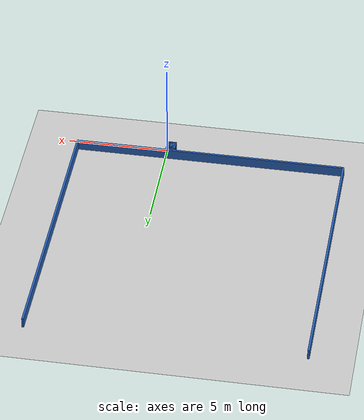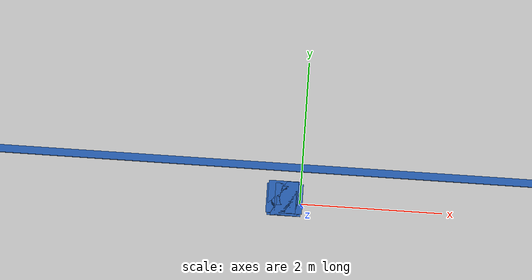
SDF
<?xml version="1.0" ?>
    <sdf version="1.5">
      <world name="default">
        <!-- A global light source -->
        <include>
          <uri>model://sun</uri>
        </include>
        <!-- A ground plane -->
        <include>
          <uri>model://ground_plane</uri>
        </include>

    <model name='libopen_space_final_T2B_123_13'>
      <static>1</static>
      <pose frame=''>-0.225000 0.075000 0.000000 0.000000 0.000000 0.000000</pose>
      <link name='link'>
        <inertial>
          <mass>1</mass>
          <inertia>
            <ixx>0.145833</ixx>
            <ixy>0</ixy>
            <ixz>0</ixz>
            <iyy>0.145833</iyy>
            <iyz>0</iyz>
            <izz>0.125</izz>
          </inertia>
        </inertial>
        <collision name='collision'>
          <geometry>
            <box>
              <size>0.42 0.41 1</size>
            </box>
          </geometry>
          <max_contacts>10</max_contacts>
          <surface>
            <contact>
              <ode/>
            </contact>
            <bounce/>
            <friction>
              <torsional>
                <ode/>
              </torsional>
              <ode/>
            </friction>
          </surface>
        </collision>
        <visual name='visual'>
          <geometry>
            <box>
              <size>0.42 0.41 1</size>
            </box>
          </geometry>
	    <material>
              <ambient>0.152000 0.379000 0.720000 1</ambient>
	      <diffuse>0.152000 0.379000 0.720000 1</diffuse>
          </material>
          <material>
            <script>
              <name>Gazebo/Grey</name>
              <uri>file://media/materials/scripts/gazebo.material</uri>
            </script>
          </material>
        </visual>
        <self_collide>0</self_collide>
        <kinematic>0</kinematic>
        <gravity>1</gravity>
      </link>
      <plugin name='libopen_space_final_T2B_123_13' filename='libopen_space_final_T2B_123_13.so'/>
    </model>

    <model name='libopen_space_final_T2B_118_43'>
      <static>1</static>
      <pose frame=''>-0.225000 0.075000 0.000000 0.000000 0.000000 0.000000</pose>
      <link name='link'>
        <inertial>
          <mass>1</mass>
          <inertia>
            <ixx>0.145833</ixx>
            <ixy>0</ixy>
            <ixz>0</ixz>
            <iyy>0.145833</iyy>
            <iyz>0</iyz>
            <izz>0.125</izz>
          </inertia>
        </inertial>
        <collision name='collision'>
          <geometry>
            <box>
              <size>0.30 0.36 1</size>
            </box>
          </geometry>
          <max_contacts>10</max_contacts>
          <surface>
            <contact>
              <ode/>
            </contact>
            <bounce/>
            <friction>
              <torsional>
                <ode/>
              </torsional>
              <ode/>
            </friction>
          </surface>
        </collision>
        <visual name='visual'>
          <geometry>
            <box>
              <size>0.30 0.36 1</size>
            </box>
          </geometry>
	    <material>
              <ambient>0.152000 0.379000 0.720000 1</ambient>
	      <diffuse>0.152000 0.379000 0.720000 1</diffuse>
          </material>
          <material>
            <script>
              <name>Gazebo/Grey</name>
              <uri>file://media/materials/scripts/gazebo.material</uri>
            </script>
          </material>
        </visual>
        <self_collide>0</self_collide>
        <kinematic>0</kinematic>
        <gravity>1</gravity>
      </link>
      <plugin name='libopen_space_final_T2B_118_43' filename='libopen_space_final_T2B_118_43.so'/>
    </model>

    <model name='libopen_space_final_T2B_114_22'>
      <static>1</static>
      <pose frame=''>-0.225000 0.075000 0.000000 0.000000 0.000000 0.000000</pose>
      <link name='link'>
        <inertial>
          <mass>1</mass>
          <inertia>
            <ixx>0.145833</ixx>
            <ixy>0</ixy>
            <ixz>0</ixz>
            <iyy>0.145833</iyy>
            <iyz>0</iyz>
            <izz>0.125</izz>
          </inertia>
        </inertial>
        <collision name='collision'>
          <geometry>
            <box>
              <size>0.36 0.46 1</size>
            </box>
          </geometry>
          <max_contacts>10</max_contacts>
          <surface>
            <contact>
              <ode/>
            </contact>
            <bounce/>
            <friction>
              <torsional>
                <ode/>
              </torsional>
              <ode/>
            </friction>
          </surface>
        </collision>
        <visual name='visual'>
          <geometry>
            <box>
              <size>0.36 0.46 1</size>
            </box>
          </geometry>
	    <material>
              <ambient>0.152000 0.379000 0.720000 1</ambient>
	      <diffuse>0.152000 0.379000 0.720000 1</diffuse>
          </material>
          <material>
            <script>
              <name>Gazebo/Grey</name>
              <uri>file://media/materials/scripts/gazebo.material</uri>
            </script>
          </material>
        </visual>
        <self_collide>0</self_collide>
        <kinematic>0</kinematic>
        <gravity>1</gravity>
      </link>
      <plugin name='libopen_space_final_T2B_114_22' filename='libopen_space_final_T2B_114_22.so'/>
    </model>

    <model name='libopen_space_final_T2B_85_42'>
      <static>1</static>
      <pose frame=''>-0.225000 0.075000 0.000000 0.000000 0.000000 0.000000</pose>
      <link name='link'>
        <inertial>
          <mass>1</mass>
          <inertia>
            <ixx>0.145833</ixx>
            <ixy>0</ixy>
            <ixz>0</ixz>
            <iyy>0.145833</iyy>
            <iyz>0</iyz>
            <izz>0.125</izz>
          </inertia>
        </inertial>
        <collision name='collision'>
          <geometry>
            <box>
              <size>0.31 0.39 1</size>
            </box>
          </geometry>
          <max_contacts>10</max_contacts>
          <surface>
            <contact>
              <ode/>
            </contact>
            <bounce/>
            <friction>
              <torsional>
                <ode/>
              </torsional>
              <ode/>
            </friction>
          </surface>
        </collision>
        <visual name='visual'>
          <geometry>
            <box>
              <size>0.31 0.39 1</size>
            </box>
          </geometry>
	    <material>
              <ambient>0.152000 0.379000 0.720000 1</ambient>
	      <diffuse>0.152000 0.379000 0.720000 1</diffuse>
          </material>
          <material>
            <script>
              <name>Gazebo/Grey</name>
              <uri>file://media/materials/scripts/gazebo.material</uri>
            </script>
          </material>
        </visual>
        <self_collide>0</self_collide>
        <kinematic>0</kinematic>
        <gravity>1</gravity>
      </link>
      <plugin name='libopen_space_final_T2B_85_42' filename='libopen_space_final_T2B_85_42.so'/>
    </model>

    <model name='libopen_space_final_T2B_125_59'>
      <static>1</static>
      <pose frame=''>-0.225000 0.075000 0.000000 0.000000 0.000000 0.000000</pose>
      <link name='link'>
        <inertial>
          <mass>1</mass>
          <inertia>
            <ixx>0.145833</ixx>
            <ixy>0</ixy>
            <ixz>0</ixz>
            <iyy>0.145833</iyy>
            <iyz>0</iyz>
            <izz>0.125</izz>
          </inertia>
        </inertial>
        <collision name='collision'>
          <geometry>
            <box>
              <size>0.13 0.27 1</size>
            </box>
          </geometry>
          <max_contacts>10</max_contacts>
          <surface>
            <contact>
              <ode/>
            </contact>
            <bounce/>
            <friction>
              <torsional>
                <ode/>
              </torsional>
              <ode/>
            </friction>
          </surface>
        </collision>
        <visual name='visual'>
          <geometry>
            <box>
              <size>0.13 0.27 1</size>
            </box>
          </geometry>
	    <material>
              <ambient>0.152000 0.379000 0.720000 1</ambient>
	      <diffuse>0.152000 0.379000 0.720000 1</diffuse>
          </material>
          <material>
            <script>
              <name>Gazebo/Grey</name>
              <uri>file://media/materials/scripts/gazebo.material</uri>
            </script>
          </material>
        </visual>
        <self_collide>0</self_collide>
        <kinematic>0</kinematic>
        <gravity>1</gravity>
      </link>
      <plugin name='libopen_space_final_T2B_125_59' filename='libopen_space_final_T2B_125_59.so'/>
    </model>

    <model name='libopen_space_final_T2B_103_35'>
      <static>1</static>
      <pose frame=''>-0.225000 0.075000 0.000000 0.000000 0.000000 0.000000</pose>
      <link name='link'>
        <inertial>
          <mass>1</mass>
          <inertia>
            <ixx>0.145833</ixx>
            <ixy>0</ixy>
            <ixz>0</ixz>
            <iyy>0.145833</iyy>
            <iyz>0</iyz>
            <izz>0.125</izz>
          </inertia>
        </inertial>
        <collision name='collision'>
          <geometry>
            <box>
              <size>0.15 0.12 1</size>
            </box>
          </geometry>
          <max_contacts>10</max_contacts>
          <surface>
            <contact>
              <ode/>
            </contact>
            <bounce/>
            <friction>
              <torsional>
                <ode/>
              </torsional>
              <ode/>
            </friction>
          </surface>
        </collision>
        <visual name='visual'>
          <geometry>
            <box>
              <size>0.15 0.12 1</size>
            </box>
          </geometry>
	    <material>
              <ambient>0.152000 0.379000 0.720000 1</ambient>
	      <diffuse>0.152000 0.379000 0.720000 1</diffuse>
          </material>
          <material>
            <script>
              <name>Gazebo/Grey</name>
              <uri>file://media/materials/scripts/gazebo.material</uri>
            </script>
          </material>
        </visual>
        <self_collide>0</self_collide>
        <kinematic>0</kinematic>
        <gravity>1</gravity>
      </link>
      <plugin name='libopen_space_final_T2B_103_35' filename='libopen_space_final_T2B_103_35.so'/>
    </model>

    <model name='libopen_space_final_T2B_83_23'>
      <static>1</static>
      <pose frame=''>-0.225000 0.075000 0.000000 0.000000 0.000000 0.000000</pose>
      <link name='link'>
        <inertial>
          <mass>1</mass>
          <inertia>
            <ixx>0.145833</ixx>
            <ixy>0</ixy>
            <ixz>0</ixz>
            <iyy>0.145833</iyy>
            <iyz>0</iyz>
            <izz>0.125</izz>
          </inertia>
        </inertial>
        <collision name='collision'>
          <geometry>
            <box>
              <size>0.21 0.18 1</size>
            </box>
          </geometry>
          <max_contacts>10</max_contacts>
          <surface>
            <contact>
              <ode/>
            </contact>
            <bounce/>
            <friction>
              <torsional>
                <ode/>
              </torsional>
              <ode/>
            </friction>
          </surface>
        </collision>
        <visual name='visual'>
          <geometry>
            <box>
              <size>0.21 0.18 1</size>
            </box>
          </geometry>
	    <material>
              <ambient>0.152000 0.379000 0.720000 1</ambient>
	      <diffuse>0.152000 0.379000 0.720000 1</diffuse>
          </material>
          <material>
            <script>
              <name>Gazebo/Grey</name>
              <uri>file://media/materials/scripts/gazebo.material</uri>
            </script>
          </material>
        </visual>
        <self_collide>0</self_collide>
        <kinematic>0</kinematic>
        <gravity>1</gravity>
      </link>
      <plugin name='libopen_space_final_T2B_83_23' filename='libopen_space_final_T2B_83_23.so'/>
    </model>

    <model name='libopen_space_final_T2B_90_7'>
      <static>1</static>
      <pose frame=''>-0.225000 0.075000 0.000000 0.000000 0.000000 0.000000</pose>
      <link name='link'>
        <inertial>
          <mass>1</mass>
          <inertia>
            <ixx>0.145833</ixx>
            <ixy>0</ixy>
            <ixz>0</ixz>
            <iyy>0.145833</iyy>
            <iyz>0</iyz>
            <izz>0.125</izz>
          </inertia>
        </inertial>
        <collision name='collision'>
          <geometry>
            <box>
              <size>0.33 0.27 1</size>
            </box>
          </geometry>
          <max_contacts>10</max_contacts>
          <surface>
            <contact>
              <ode/>
            </contact>
            <bounce/>
            <friction>
              <torsional>
                <ode/>
              </torsional>
              <ode/>
            </friction>
          </surface>
        </collision>
        <visual name='visual'>
          <geometry>
            <box>
              <size>0.33 0.27 1</size>
            </box>
          </geometry>
	    <material>
              <ambient>0.152000 0.379000 0.720000 1</ambient>
	      <diffuse>0.152000 0.379000 0.720000 1</diffuse>
          </material>
          <material>
            <script>
              <name>Gazebo/Grey</name>
              <uri>file://media/materials/scripts/gazebo.material</uri>
            </script>
          </material>
        </visual>
        <self_collide>0</self_collide>
        <kinematic>0</kinematic>
        <gravity>1</gravity>
      </link>
      <plugin name='libopen_space_final_T2B_90_7' filename='libopen_space_final_T2B_90_7.so'/>
    </model>

    <model name='libopen_space_final_T2B_148_40'>
      <static>1</static>
      <pose frame=''>-0.225000 0.075000 0.000000 0.000000 0.000000 0.000000</pose>
      <link name='link'>
        <inertial>
          <mass>1</mass>
          <inertia>
            <ixx>0.145833</ixx>
            <ixy>0</ixy>
            <ixz>0</ixz>
            <iyy>0.145833</iyy>
            <iyz>0</iyz>
            <izz>0.125</izz>
          </inertia>
        </inertial>
        <collision name='collision'>
          <geometry>
            <box>
              <size>0.49 0.40 1</size>
            </box>
          </geometry>
          <max_contacts>10</max_contacts>
          <surface>
            <contact>
              <ode/>
            </contact>
            <bounce/>
            <friction>
              <torsional>
                <ode/>
              </torsional>
              <ode/>
            </friction>
          </surface>
        </collision>
        <visual name='visual'>
          <geometry>
            <box>
              <size>0.49 0.40 1</size>
            </box>
          </geometry>
	    <material>
              <ambient>0.152000 0.379000 0.720000 1</ambient>
	      <diffuse>0.152000 0.379000 0.720000 1</diffuse>
          </material>
          <material>
            <script>
              <name>Gazebo/Grey</name>
              <uri>file://media/materials/scripts/gazebo.material</uri>
            </script>
          </material>
        </visual>
        <self_collide>0</self_collide>
        <kinematic>0</kinematic>
        <gravity>1</gravity>
      </link>
      <plugin name='libopen_space_final_T2B_148_40' filename='libopen_space_final_T2B_148_40.so'/>
    </model>

    <model name='libopen_space_final_T2B_96_0'>
      <static>1</static>
      <pose frame=''>-0.225000 0.075000 0.000000 0.000000 0.000000 0.000000</pose>
      <link name='link'>
        <inertial>
          <mass>1</mass>
          <inertia>
            <ixx>0.145833</ixx>
            <ixy>0</ixy>
            <ixz>0</ixz>
            <iyy>0.145833</iyy>
            <iyz>0</iyz>
            <izz>0.125</izz>
          </inertia>
        </inertial>
        <collision name='collision'>
          <geometry>
            <box>
              <size>0.24 0.33 1</size>
            </box>
          </geometry>
          <max_contacts>10</max_contacts>
          <surface>
            <contact>
              <ode/>
            </contact>
            <bounce/>
            <friction>
              <torsional>
                <ode/>
              </torsional>
              <ode/>
            </friction>
          </surface>
        </collision>
        <visual name='visual'>
          <geometry>
            <box>
              <size>0.24 0.33 1</size>
            </box>
          </geometry>
	    <material>
              <ambient>0.152000 0.379000 0.720000 1</ambient>
	      <diffuse>0.152000 0.379000 0.720000 1</diffuse>
          </material>
          <material>
            <script>
              <name>Gazebo/Grey</name>
              <uri>file://media/materials/scripts/gazebo.material</uri>
            </script>
          </material>
        </visual>
        <self_collide>0</self_collide>
        <kinematic>0</kinematic>
        <gravity>1</gravity>
      </link>
      <plugin name='libopen_space_final_T2B_96_0' filename='libopen_space_final_T2B_96_0.so'/>
    </model>

    <model name='libopen_space_final_T2B_91_57'>
      <static>1</static>
      <pose frame=''>-0.225000 0.075000 0.000000 0.000000 0.000000 0.000000</pose>
      <link name='link'>
        <inertial>
          <mass>1</mass>
          <inertia>
            <ixx>0.145833</ixx>
            <ixy>0</ixy>
            <ixz>0</ixz>
            <iyy>0.145833</iyy>
            <iyz>0</iyz>
            <izz>0.125</izz>
          </inertia>
        </inertial>
        <collision name='collision'>
          <geometry>
            <box>
              <size>0.26 0.41 1</size>
            </box>
          </geometry>
          <max_contacts>10</max_contacts>
          <surface>
            <contact>
              <ode/>
            </contact>
            <bounce/>
            <friction>
              <torsional>
                <ode/>
              </torsional>
              <ode/>
            </friction>
          </surface>
        </collision>
        <visual name='visual'>
          <geometry>
            <box>
              <size>0.26 0.41 1</size>
            </box>
          </geometry>
	    <material>
              <ambient>0.152000 0.379000 0.720000 1</ambient>
	      <diffuse>0.152000 0.379000 0.720000 1</diffuse>
          </material>
          <material>
            <script>
              <name>Gazebo/Grey</name>
              <uri>file://media/materials/scripts/gazebo.material</uri>
            </script>
          </material>
        </visual>
        <self_collide>0</self_collide>
        <kinematic>0</kinematic>
        <gravity>1</gravity>
      </link>
      <plugin name='libopen_space_final_T2B_91_57' filename='libopen_space_final_T2B_91_57.so'/>
    </model>

    <model name='libopen_space_final_T2B_91_29'>
      <static>1</static>
      <pose frame=''>-0.225000 0.075000 0.000000 0.000000 0.000000 0.000000</pose>
      <link name='link'>
        <inertial>
          <mass>1</mass>
          <inertia>
            <ixx>0.145833</ixx>
            <ixy>0</ixy>
            <ixz>0</ixz>
            <iyy>0.145833</iyy>
            <iyz>0</iyz>
            <izz>0.125</izz>
          </inertia>
        </inertial>
        <collision name='collision'>
          <geometry>
            <box>
              <size>0.45 0.47 1</size>
            </box>
          </geometry>
          <max_contacts>10</max_contacts>
          <surface>
            <contact>
              <ode/>
            </contact>
            <bounce/>
            <friction>
              <torsional>
                <ode/>
              </torsional>
              <ode/>
            </friction>
          </surface>
        </collision>
        <visual name='visual'>
          <geometry>
            <box>
              <size>0.45 0.47 1</size>
            </box>
          </geometry>
	    <material>
              <ambient>0.152000 0.379000 0.720000 1</ambient>
	      <diffuse>0.152000 0.379000 0.720000 1</diffuse>
          </material>
          <material>
            <script>
              <name>Gazebo/Grey</name>
              <uri>file://media/materials/scripts/gazebo.material</uri>
            </script>
          </material>
        </visual>
        <self_collide>0</self_collide>
        <kinematic>0</kinematic>
        <gravity>1</gravity>
      </link>
      <plugin name='libopen_space_final_T2B_91_29' filename='libopen_space_final_T2B_91_29.so'/>
    </model>

    <model name='libopen_space_final_T2B_125_48'>
      <static>1</static>
      <pose frame=''>-0.225000 0.075000 0.000000 0.000000 0.000000 0.000000</pose>
      <link name='link'>
        <inertial>
          <mass>1</mass>
          <inertia>
            <ixx>0.145833</ixx>
            <ixy>0</ixy>
            <ixz>0</ixz>
            <iyy>0.145833</iyy>
            <iyz>0</iyz>
            <izz>0.125</izz>
          </inertia>
        </inertial>
        <collision name='collision'>
          <geometry>
            <box>
              <size>0.25 0.46 1</size>
            </box>
          </geometry>
          <max_contacts>10</max_contacts>
          <surface>
            <contact>
              <ode/>
            </contact>
            <bounce/>
            <friction>
              <torsional>
                <ode/>
              </torsional>
              <ode/>
            </friction>
          </surface>
        </collision>
        <visual name='visual'>
          <geometry>
            <box>
              <size>0.25 0.46 1</size>
            </box>
          </geometry>
	    <material>
              <ambient>0.152000 0.379000 0.720000 1</ambient>
	      <diffuse>0.152000 0.379000 0.720000 1</diffuse>
          </material>
          <material>
            <script>
              <name>Gazebo/Grey</name>
              <uri>file://media/materials/scripts/gazebo.material</uri>
            </script>
          </material>
        </visual>
        <self_collide>0</self_collide>
        <kinematic>0</kinematic>
        <gravity>1</gravity>
      </link>
      <plugin name='libopen_space_final_T2B_125_48' filename='libopen_space_final_T2B_125_48.so'/>
    </model>

        <model name='bottom_wall'>
          <static>1</static>
          <pose frame=''>-2.25 0.5 0.000000 0.000000 0.000000 1.57079632</pose>
          <link name='link'>
            <inertial>
            <mass>1</mass>
            <inertia>
              <ixx>0.145833</ixx>
              <ixy>0</ixy>
              <ixz>0</ixz>
              <iyy>0.145833</iyy>
              <iyz>0</iyz>
              <izz>0.125</izz>
            </inertia>
            </inertial>
            <collision name='collision'>
            <geometry>
              <box>
              <size>0.1 13.5 1</size>
              </box>
            </geometry>
            <max_contacts>10</max_contacts>
            <surface>
              <contact>
              <ode/>
              </contact>
              <bounce/>
              <friction>
              <torsional>
                <ode/>
              </torsional>
              <ode/>
              </friction>
            </surface>
            </collision>
            <visual name='visual'>
            <geometry>
              <box>
              <size>0.1 13.5 1</size>
              </box>
            </geometry>
            <material>
              <ambient>0.152000 0.379000 0.720000 1</ambient>
            <diffuse>0.152000 0.379000 0.720000 1</diffuse>
            </material>
            <material>
              <script>
              <name>Gazebo/Grey</name>
              <uri>file://media/materials/scripts/gazebo.material</uri>
              </script>
            </material>
            </visual>
            <self_collide>0</self_collide>
            <kinematic>0</kinematic>
            <gravity>1</gravity>
          </link>
        </model>

        <model name='left_wall'>
          <static>1</static>
          <pose frame=''>-9 7.25 0.000000 0.000000 0.000000 0.000000</pose>
          <link name='link'>
            <inertial>
            <mass>1</mass>
            <inertia>
              <ixx>0.145833</ixx>
              <ixy>0</ixy>
              <ixz>0</ixz>
              <iyy>0.145833</iyy>
              <iyz>0</iyz>
              <izz>0.125</izz>
            </inertia>
            </inertial>
            <collision name='collision'>
            <geometry>
              <box>
              <size>0.1 13.5 1</size>
              </box>
            </geometry>
            <max_contacts>10</max_contacts>
            <surface>
              <contact>
              <ode/>
              </contact>
              <bounce/>
              <friction>
              <torsional>
                <ode/>
              </torsional>
              <ode/>
              </friction>
            </surface>
            </collision>
            <visual name='visual'>
            <geometry>
              <box>
              <size>0.1 13.5 1</size>
              </box>
            </geometry>
            <material>
              <ambient>0.152000 0.379000 0.720000 1</ambient>
            <diffuse>0.152000 0.379000 0.720000 1</diffuse>
            </material>
            <material>
              <script>
              <name>Gazebo/Grey</name>
              <uri>file://media/materials/scripts/gazebo.material</uri>
              </script>
            </material>
            </visual>
            <self_collide>0</self_collide>
            <kinematic>0</kinematic>
            <gravity>1</gravity>
          </link>
        </model>

        <model name='right_wall'>
          <static>1</static>
          <pose frame=''>4.5 7.25 0.000000 0.000000 0.000000 0.000000</pose>
          <link name='link'>
            <inertial>
            <mass>1</mass>
            <inertia>
              <ixx>0.145833</ixx>
              <ixy>0</ixy>
              <ixz>0</ixz>
              <iyy>0.145833</iyy>
              <iyz>0</iyz>
              <izz>0.125</izz>
            </inertia>
            </inertial>
            <collision name='collision'>
            <geometry>
              <box>
              <size>0.1 13.5 1</size>
              </box>
            </geometry>
            <max_contacts>10</max_contacts>
            <surface>
              <contact>
              <ode/>
              </contact>
              <bounce/>
              <friction>
              <torsional>
                <ode/>
              </torsional>
              <ode/>
              </friction>
            </surface>
            </collision>
            <visual name='visual'>
            <geometry>
              <box>
              <size>0.1 13.5 1</size>
              </box>
            </geometry>
            <material>
              <ambient>0.152000 0.379000 0.720000 1</ambient>
            <diffuse>0.152000 0.379000 0.720000 1</diffuse>
            </material>
            <material>
              <script>
              <name>Gazebo/Grey</name>
              <uri>file://media/materials/scripts/gazebo.material</uri>
              </script>
            </material>
            </visual>
            <self_collide>0</self_collide>
            <kinematic>0</kinematic>
            <gravity>1</gravity>
          </link>
        </model>

      </world>
    </sdf>"
